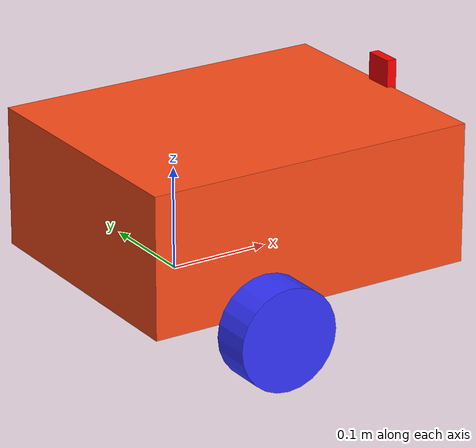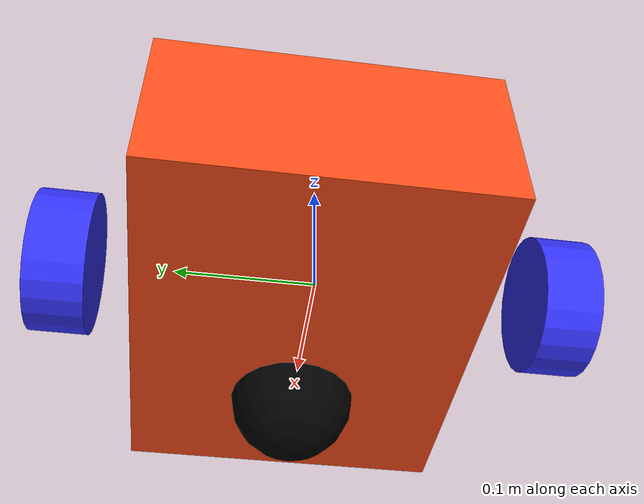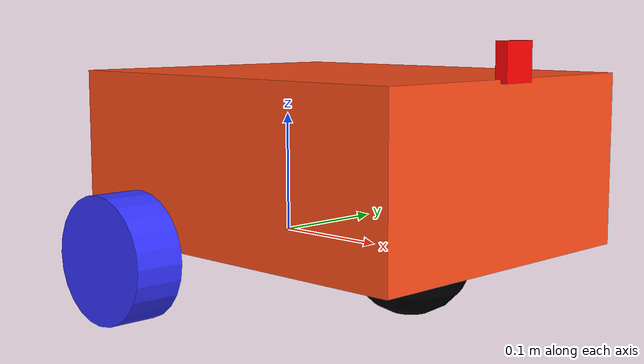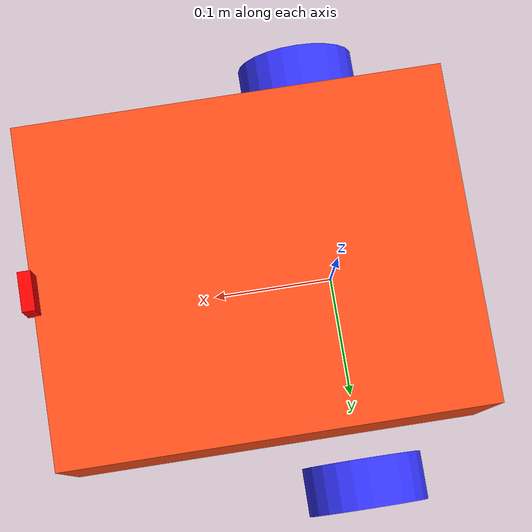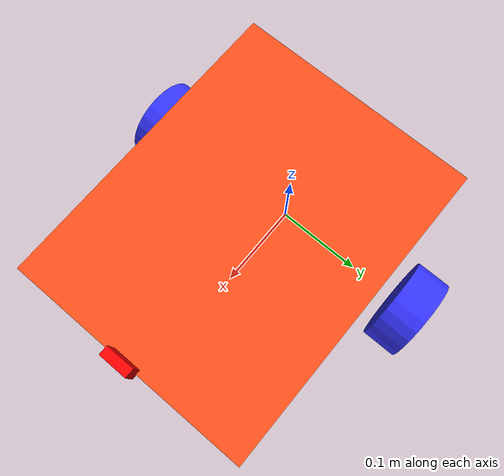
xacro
<?xml version="1.0"?>
<robot xmlns:xacro="http://www.ros.org/wiki/xacro"  name="robot">

    <xacro:property name="chassis_length" value="0.335"/>
    <xacro:property name="chassis_width" value="0.265"/>
    <xacro:property name="chassis_height" value="0.138"/>
    <xacro:property name="wheel_radius" value="0.05"/>
    <xacro:property name="wheel_thickness" value="0.026"/>
    <xacro:property name="mass" value="1.0"/>

    <material name="white">
        <color rgba="1 1 1 1" />
    </material>

    <material name="orange">
        <color rgba="1 0.3 0.1 1"/>
    </material>

    <material name="blue">
        <color rgba="0.2 0.2 1 1"/>
    </material>

    <material name="black">
        <color rgba="0 0 0 1"/>
    </material>

    <material name="red">
        <color rgba="1 0 0 1"/>
    </material>

    <link name="base_link">
    </link>

    <link name="chassis">
        <visual>
            <origin xyz="${chassis_length/2} 0 ${chassis_height/2}"/>
            <geometry>
                <box size="${chassis_length} ${chassis_width} ${chassis_height}"/>
            </geometry>
            <material name="orange"/>
        </visual>
        <collision>
            <origin xyz="${chassis_length/2} 0 ${chassis_height/2}"/>
            <geometry>
                <box size="${chassis_length} ${chassis_width} ${chassis_height}"/>
            </geometry>
        </collision>
        <inertial>
            <origin xyz="${chassis_length/2} 0 ${chassis_height/2}" rpy="0 0 0"/>
            <mass value="${mass}"/>
            <inertia ixx="${(1/12) * mass * (chassis_width*chassis_width+chassis_height*chassis_height)}" ixy="0.0" ixz="0.0"
                     iyy="${(1/12) * mass * (chassis_length*chassis_length+chassis_height*chassis_height)}" iyz="0.0"
                     izz="${(1/12) * mass * (chassis_length*chassis_length+chassis_width*chassis_width)}"/>
        </inertial>
    </link>

    <joint name="chassis_joint" type="fixed">
        <parent link="base_link"/>
        <child link="chassis"/>
        <origin xyz="-0.1 0 0"/>
    </joint>

    <!-- LEFT WHEEL -->
    <joint name="left_wheel_joint" type="continuous">
        <parent link="base_link"/>
        <child link="left_wheel"/>
        <origin xyz="0 0.175 0" rpy="-${pi/2} 0 0" />
        <axis xyz="0 0 1"/>
    </joint>

    <link name="left_wheel">
        <visual>
            <geometry>
                <cylinder radius="${wheel_radius}" length="0.04"/>
            </geometry>
            <material name="blue"/>
        </visual>
        <collision>
            <geometry>
                <cylinder radius="${wheel_radius}" length="0.04"/>
            </geometry>
        </collision>
        <inertial>
            <origin xyz="0 0 0" rpy="0 0 0"/>
            <mass value="0.1"/>
            <inertia ixx="${(1/12) * 0.1 * (3*wheel_radius*wheel_radius + 0.04*0.04)}" ixy="0" ixz="0"
                     iyy="${(1/12) * 0.1 * (3*wheel_radius*wheel_radius + 0.04*0.04)}" iyz="0"
                     izz="${(1/2) * 0.1 * wheel_radius*wheel_radius}"/>
        </inertial>
    </link>

    <!-- RIGHT WHEEL -->
    <joint name="right_wheel_joint" type="continuous">
        <parent link="base_link"/>
        <child link="right_wheel"/>
        <origin xyz="0 -0.175 0" rpy="${pi/2} 0 0" />
        <axis xyz="0 0 -1"/>
    </joint>

    <link name="right_wheel">
        <visual>
            <geometry>
                <cylinder radius="${wheel_radius}" length="0.04"/>
            </geometry>
            <material name="blue"/>
        </visual>
        <collision>
            <geometry>
                <cylinder radius="${wheel_radius}" length="0.04"/>
            </geometry>
        </collision>
        <inertial>
            <origin xyz="0 0 0" rpy="0 0 0"/>
            <mass value="0.1"/>
            <inertia ixx="${(1/12) * 0.1 * (3*wheel_radius*wheel_radius + 0.04*0.04)}" ixy="0" ixz="0"
                     iyy="${(1/12) * 0.1 * (3*wheel_radius*wheel_radius + 0.04*0.04)}" iyz="0"
                     izz="${(1/2) * 0.1 * wheel_radius*wheel_radius}"/>
        </inertial>
    </link>

    <!-- CASTER WHEEL -->
    <joint name="caster_wheel_joint" type="fixed">
        <parent link="chassis"/>
        <child link="caster_wheel"/>
        <origin xyz="0.24 0 0"/>
    </joint>

    <link name="caster_wheel">
        <visual>
            <geometry>
                <sphere radius="0.05"/>
            </geometry>
            <material name="black"/>
        </visual>
        <collision>
            <geometry>
                <sphere radius="0.05"/>
            </geometry>
        </collision>
        <inertial>
            <origin xyz="0 0 0" rpy="0 0 0"/>
            <mass value="0.1"/>
            <inertia ixx="${(2/5) * 0.1 * 0.05*0.05}" ixy="0" ixz="0"
                     iyy="${(2/5) * 0.1 * 0.05*0.05}" iyz="0"
                     izz="${(2/5) * 0.1 * 0.05*0.05}"/>
        </inertial>
    </link>

    <gazebo reference="caster_wheel">
        <material>Gazebo/Black</material>
        <mu1 value="0.001"/>
        <mu2 value="0.001"/>
    </gazebo>

    <!-- CAMERA -->
    <joint name="camera_joint" type="fixed">
        <parent link="chassis"/>
        <child link="camera_link"/>
        <origin xyz="0.335 0 0.15" rpy="0 0 0"/>
    </joint>

    <link name="camera_link">
        <visual>
            <geometry>
                <box size="0.010 0.03 0.03"/>
            </geometry>
            <material name="red"/>
        </visual>
    </link>

    <joint name="camera_optical_joint" type="fixed">
        <parent link="camera_link"/>
        <child link="camera_link_optical"/>
        <origin xyz="0 0 0" rpy="${-pi/2} 0 ${-pi/2}"/>
    </joint>

    <link name="camera_link_optical"></link>

    <gazebo reference="camera_link">
        <material>Gazebo/Red</material>

        <sensor name="camera" type="camera">
            <pose> 0 0 0 0 0 0 </pose>
            <visualize>true</visualize>
            <update_rate>10</update_rate>
            <camera>
                <horizontal_fov>1.089</horizontal_fov>
                <image>
                    <format>R8G8B8</format>
                    <width>640</width>
                    <height>480</height>
                </image>
                <clip>
                    <near>0.05</near>
                    <far>8.0</far>
                </clip>
            </camera>
            <topic>camera/image_raw</topic>
            <gz_frame_id>camera_link_optical</gz_frame_id>
        </sensor>
    </gazebo>

    <gazebo>
        <plugin filename="gz-sim-diff-drive-system" name="gz::sim::systems::DiffDrive">
            <left_joint>left_wheel_joint</left_joint>
            <right_joint>right_wheel_joint</right_joint>
            <wheel_separation>0.35</wheel_separation>
            <wheel_radius>0.05</wheel_radius>
            <odom_publish_frequency>20</odom_publish_frequency>
            <topic>cmd_vel</topic>
            <odom_topic>odom</odom_topic>
            <tf_topic>tf</tf_topic>
            <frame_id>odom</frame_id>
            <child_frame_id>base_link</child_frame_id>
        </plugin>

        <plugin filename="gz-sim-joint-state-publisher-system" name="gz::sim::systems::JointStatePublisher">
            <topic>joint_states</topic>
        </plugin>
    </gazebo>

</robot>
